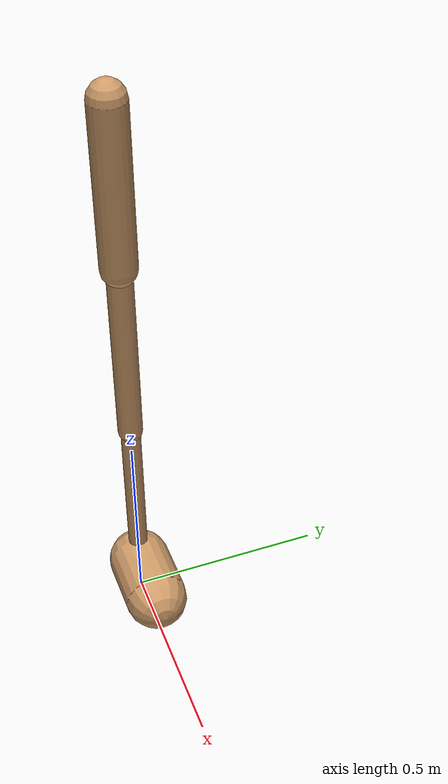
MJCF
<mujoco model="walker2d">
  <compiler angle="degree" coordinate="global" inertiafromgeom="true" />
  <default>
    <joint armature="0.01" damping=".1" limited="true" />
    <geom conaffinity="0" condim="3" contype="1" density="1000" friction="0.8 .1 .1" rgba="0.8 0.6 .4 1" />
  </default>
  <option integrator="RK4" timestep="0.002" />
  <worldbody>

    <body name="torso" pos="0 0 0.058305364362016984">
      <joint armature="0" axis="1 0 0" damping="0" limited="false" name="ignorex" pos="0 0 0" stiffness="0" type="slide" />
      <joint armature="0" axis="0 0 1" damping="0" limited="false" name="ignorez" pos="0 0 0" ref="1.25" stiffness="0" type="slide" />
      <joint armature="0" axis="0 1 0" damping="0" limited="false" name="ignorey" pos="0 0 0" stiffness="0" type="hinge" />
      <geom fromto="0 0 1.45 0 0 1.05" name="torso_geom" size="0.0435776415796917" type="capsule" />
      <body name="thigh">
        <joint axis="0 -1 0" name="thigh_joint" pos="0 0 1.05" range="-150 0" type="hinge" />
        <geom fromto="0.0 0.0 1.05 0.0 0.0 0.5723816695127287" name="thigh_geom" size="0.03072597357494873" type="capsule" />
        <body name="leg" pos="0.0 0.0 -0.027618330487271248">
          <joint axis="0 -1 0" name="leg_joint" pos="0 0 0.6" range="-150 0" type="hinge" />
          <geom fromto="0.0 0.0 0.6 0.0 0.0 0.06931296612525423" name="leg_geom" size="0.024580778859958984" type="capsule" />
          <body name="foot" pos="0.0 0.0 -0.030687033874745778">
            <joint axis="0 -1 0" name="foot_joint" pos="0 0 0.1" range="-45 45" type="hinge" />
            <geom fromto="0.0 0.0 0.1 0.1463881835052786 0.0 0.1" name="foot_geom" size="0.08016786211556096" type="capsule" />
          </body>
        </body>
      </body>

      <body name="thigh_left">
        <joint axis="0 -1 0" name="thigh_left_joint" pos="0 0 1.05" range="-150 0" type="hinge" />
        <geom fromto="0.0 0.0 1.05 0.0 0.0 0.5723816695127287" name="thigh_left_geom" rgba=".7 .3 .6 1" size="0.03072597357494873" type="capsule" />
        <body name="leg_left" pos="0.0 0.0 -0.027618330487271248">
          <joint axis="0 -1 0" name="leg_left_joint" pos="0 0 0.6" range="-150 0" type="hinge" />
          <geom fromto="0.0 0.0 0.6 0.0 0.0 0.06931296612525423" name="leg_left_geom" rgba=".7 .3 .6 1" size="0.024580778859958984" type="capsule" />
          <body name="foot_left" pos="0.0 0.0 -0.030687033874745778">
            <joint axis="0 -1 0" name="foot_left_joint" pos="0 0 0.1" range="-45 45" type="hinge" />
            <geom fromto="0.0 0.0 0.1 0.1463881835052786 0.0 0.1" name="foot_left_geom" rgba=".7 .3 .6 1" size="0.08016786211556096" type="capsule" />
          </body>
        </body>
      </body>
    </body>
  </worldbody>
  <actuator>

    <motor ctrllimited="true" ctrlrange="-1.0 1.0" gear="100" joint="thigh_joint" />
    <motor ctrllimited="true" ctrlrange="-1.0 1.0" gear="100" joint="leg_joint" />
    <motor ctrllimited="true" ctrlrange="-1.0 1.0" gear="100" joint="foot_joint" />
    <motor ctrllimited="true" ctrlrange="-1.0 1.0" gear="100" joint="thigh_left_joint" />
    <motor ctrllimited="true" ctrlrange="-1.0 1.0" gear="100" joint="leg_left_joint" />
    <motor ctrllimited="true" ctrlrange="-1.0 1.0" gear="100" joint="foot_left_joint" />

  </actuator>
</mujoco>
